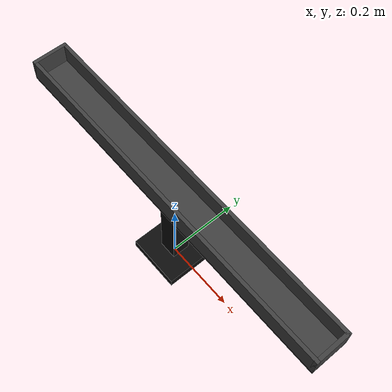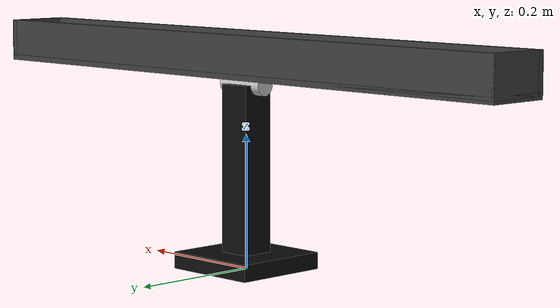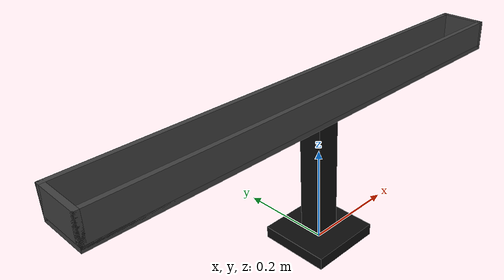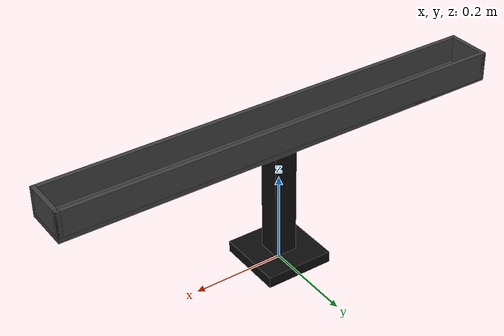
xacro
<?xml version="1.0"?>
<robot name="ball_beam" xmlns:xacro="http://www.ros.org/wiki/xacro">

  <!-- MATERIAIS                     -->

  <material name="dark_gray">
    <color rgba="0.25 0.25 0.25 1"/>
  </material>

  <material name="black">
    <color rgba="0.05 0.05 0.05 1"/>
  </material>

  <material name="silver">
    <color rgba="0.8 0.8 0.8 1"/>
  </material>

  <!-- BASE FIXA (mundo)            -->
  <!-- OBRIGATÓRIO: link raiz       -->

  <link name="base_link">
    <visual>
      <origin xyz="0 0 0.0125"/>
      <geometry>
        <box size="0.15 0.15 0.025"/>
      </geometry>
      <material name="black"/>
    </visual>
    <collision>
      <origin xyz="0 0 0.0125"/>
      <geometry>
        <box size="0.15 0.15 0.025"/>
      </geometry>
    </collision>
    <inertial>
      <mass value="2.0"/>
      <inertia ixx="0.01" ixy="0" ixz="0"
               iyy="0.01" iyz="0" izz="0.01"/>
    </inertial>
  </link>

  <!-- SUPORTE VERTICAL              -->

  <link name="support_link">
    <visual>
      <origin xyz="0 0 0.125"/>
      <geometry>
        <box size="0.05 0.05 0.25"/>
      </geometry>
      <material name="black"/>
    </visual>
    <collision>
      <origin xyz="0 0 0.125"/>
      <geometry>
        <box size="0.05 0.05 0.25"/>
      </geometry>
    </collision>
    <inertial>
      <mass value="1.0"/>
      <inertia ixx="0.01" ixy="0" ixz="0"
               iyy="0.01" iyz="0" izz="0.01"/>
    </inertial>
  </link>

  <joint name="support_fixed" type="fixed">
    <parent link="base_link"/>
    <child  link="support_link"/>
    <origin xyz="0 0 0.025"/>
  </joint>

  <!-- EIXO DO MOTOR                 -->

  <link name="motor_axis_link">
    <visual>
      <origin xyz="0 0 0" rpy="0 1.5708 0"/>
      <geometry>
        <cylinder radius="0.015" length="0.08"/>
      </geometry>
      <material name="silver"/>
    </visual>
    <collision>
      <origin xyz="0 0 0" rpy="0 1.5708 0"/>
      <geometry>
        <cylinder radius="0.015" length="0.08"/>
      </geometry>
    </collision>
    <inertial>
      <mass value="0.2"/>
      <inertia ixx="0.001" ixy="0" ixz="0"
               iyy="0.001" iyz="0" izz="0.001"/>
    </inertial>
  </link>

  <joint name="axis_fixed" type="fixed">
    <parent link="support_link"/>
    <child  link="motor_axis_link"/>
    <origin xyz="0 0 0.25"/>
  </joint>

  <!-- BARRA (canal onde a bola rola)-->

  <link name="beam_link">

    <!-- Fundo da calha -->
    <visual name="floor_visual">
      <origin xyz="0 0 0"/>
      <geometry>
        <box size="1.0 0.10 0.01"/>
      </geometry>
      <material name="dark_gray"/>
    </visual>
    <collision name="floor_collision">
      <origin xyz="0 0 0"/>
      <geometry>
        <box size="1.0 0.10 0.01"/>
      </geometry>
    </collision>

    <!-- Parede esquerda (Y+) -->
    <visual name="left_wall_visual">
      <origin xyz="0 0.045 0.03"/>
      <geometry>
        <box size="1.0 0.01 0.06"/>
      </geometry>
      <material name="dark_gray"/>
    </visual>
    <collision name="left_wall_collision">
      <origin xyz="0 0.045 0.03"/>
      <geometry>
        <box size="1.0 0.01 0.06"/>
      </geometry>
    </collision>

    <!-- Parede direita (Y-) -->
    <visual name="right_wall_visual">
      <origin xyz="0 -0.045 0.03"/>
      <geometry>
        <box size="1.0 0.01 0.06"/>
      </geometry>
      <material name="dark_gray"/>
    </visual>
    <collision name="right_wall_collision">
      <origin xyz="0 -0.045 0.03"/>
      <geometry>
        <box size="1.0 0.01 0.06"/>
      </geometry>
    </collision>

    <!-- Batente esquerdo -->
    <visual name="left_stop_visual">
      <origin xyz="-0.495 0 0.03"/>
      <geometry>
        <box size="0.01 0.10 0.06"/>
      </geometry>
      <material name="dark_gray"/>
    </visual>

    <collision name="left_stop_collision">
      <origin xyz="-0.495 0 0.03"/>
      <geometry>
        <box size="0.01 0.10 0.06"/>
      </geometry>
    </collision>

    <!-- Batente direito -->
    <visual name="right_stop_visual">
      <origin xyz="0.495 0 0.03"/>
      <geometry>
        <box size="0.01 0.10 0.06"/>
      </geometry>
      <material name="dark_gray"/>
    </visual>

    <collision name="right_stop_collision">
      <origin xyz="0.495 0 0.03"/>
      <geometry>
        <box size="0.01 0.10 0.06"/>
      </geometry>
    </collision>

    <inertial>
      <mass value="0.5"/>
      <inertia ixx="0.01" ixy="0" ixz="0"
               iyy="0.05" iyz="0" izz="0.05"/>
    </inertial>

  </link>

  <!-- JOINT DA BARRA (revolute)      -->
  <!-- Eixo Y = inclina X (rola bola) -->

  <joint name="beam_joint" type="revolute">
    <parent link="motor_axis_link"/>
    <child  link="beam_link"/>
    <origin xyz="0 0 0.015"/>   <!-- levanta 1.5 cm p/ bola caber abaixo -->
    <axis xyz="0 1 0"/>
    <limit lower="-0.25" upper="0.25"
           effort="20"  velocity="2.0"/>
    <dynamics damping="0.2" friction="0.05"/>
  </joint>

  <!-- ros2_control: actuator da     -->
  <!-- junta beam_joint              -->

  <ros2_control name="ball_beam_system" type="system">

    <hardware>
      <plugin>gz_ros2_control/GazeboSimSystem</plugin>
    </hardware>

    <joint name="beam_joint">
    <command_interface name="position">
        <param name="min">-0.25</param>
        <param name="max">0.25</param>
    </command_interface>

    <state_interface name="position"/>
    <state_interface name="velocity"/>
    </joint>

  </ros2_control>

  <!-- Plugin Gazebo para ros2_control -->

  <gazebo>
    <plugin filename="gz_ros2_control-system"
            name="gz_ros2_control::GazeboSimROS2ControlPlugin">
      <parameters>$(find ball_beam_rl)/config/controllers.yaml</parameters>
    </plugin>
  </gazebo>

  <!-- Fricção da barra (Gazebo) -->

  <gazebo reference="beam_link">
    <mu1>0.4</mu1>
    <mu2>0.4</mu2>
  </gazebo>

</robot>
